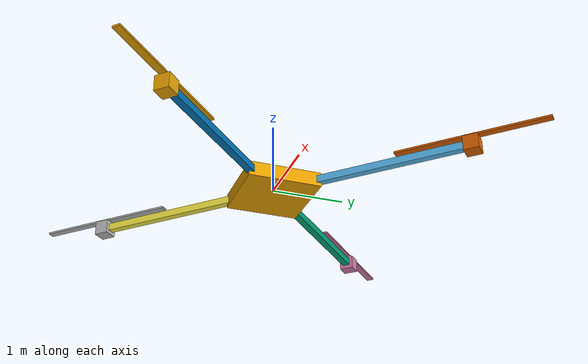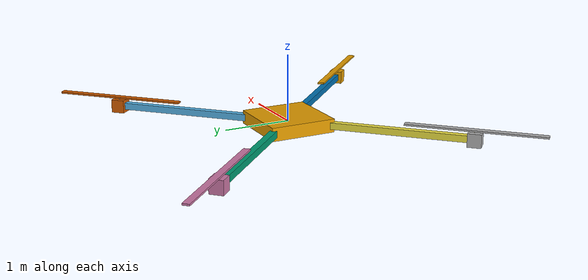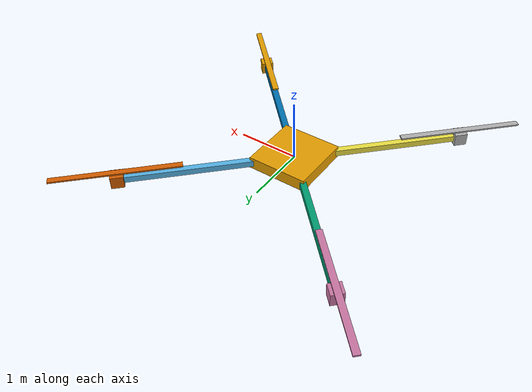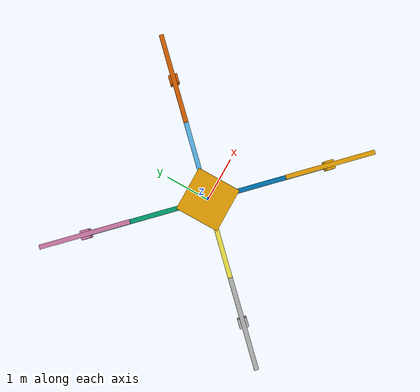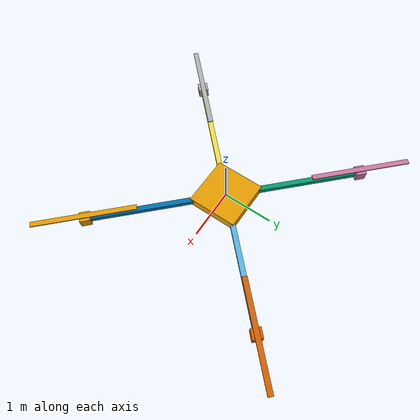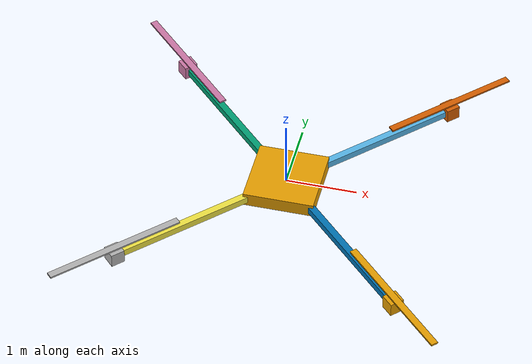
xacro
<?xml version="1.0"?>
<robot name="quadrotor" xmlns:xacro="http://www.ros.org/wiki/xacro">

<!-- body, airfoil sizes -->
<xacro:property name="body_s" value="1" />

<!-- body link -->
<xacro:property name="body_x" value="${body_s}" />
<xacro:property name="body_y" value="${body_s}" />
<xacro:property name="body_z" value="${body_s/5}" />
<xacro:property name="body_m" value="2" />

    <link name="body_FLU">
        <visual>
            <geometry>
               <box size="${body_x} ${body_y} ${body_z}" />
            </geometry>
        </visual>

        <collision>
            <geometry>
               <box size="${body_x} ${body_y} ${body_z}" />
            </geometry>
        </collision>

        <inertial>
            <mass value="${body_m}" />
             <inertia ixx="${1/12*body_m*(body_y*body_y+body_z*body_z)}" ixy="0" ixz="0" iyz="0"
                iyy="${1/12*body_m*(body_x*body_x+body_z*body_z)}" izz="${1/12*body_m*(body_x*body_x+body_y*body_y)}" />
        </inertial>

    </link>

<xacro:property name="arm_x" value="${2*body_s}" />
<xacro:property name="arm_y" value="${0.1*body_s}" />
<xacro:property name="arm_z" value="${0.1*body_s}" />
<xacro:property name="arm_m" value="${0.1*body_m}" />

    <link name="arm_1">
        <visual>
        <origin xyz="${arm_x/2} 0 0"/>
            <geometry>
               <box size="${arm_x} ${arm_y} ${arm_z}" />
            </geometry>
        </visual>

        <collision>
        <origin xyz="${arm_x/2} 0 0"/>
            <geometry>
               <box size="${arm_x} ${arm_y} ${arm_z}" />
            </geometry>
        </collision>

        <inertial>
            <origin xyz="${arm_x/2} 0 0"/>
            <mass value="${arm_m}" />
            <inertia ixx="${1/12*arm_m*(arm_y*arm_y+arm_z*arm_z)}" ixy="0" ixz="0" iyz="0"
                    iyy="${1/12*arm_m*(arm_x*arm_x+arm_z*arm_z)}" izz="${1/12*arm_m*(arm_x*arm_x+arm_y*arm_y)}" />
        </inertial>
    </link>

    <joint name="body_FLU_to_arm_1" type="fixed">
        <origin xyz="${0.9*body_x/2} ${0.9*body_y/2} 0" rpy="0 0 ${pi/4}"/>
        <parent link="body_FLU" />
        <child link="arm_1" />
    </joint>

    <link name="arm_2">
        <visual>
        <origin xyz="${arm_x/2} 0 0"/>
            <geometry>
                <box size="${arm_x} ${arm_y} ${arm_z}" />
            </geometry>
        </visual>

        <collision>
            <origin xyz="${arm_x/2} 0 0"/>
            <geometry>
                <box size="${arm_x} ${arm_y} ${arm_z}" />
            </geometry>
        </collision>

        <inertial>
            <origin xyz="${arm_x/2} 0 0"/>
            <mass value="${arm_m}" />
            <inertia ixx="${1/12*arm_m*(arm_y*arm_y+arm_z*arm_z)}" ixy="0" ixz="0" iyz="0"
                iyy="${1/12*arm_m*(arm_x*arm_x+arm_z*arm_z)}" izz="${1/12*arm_m*(arm_x*arm_x+arm_y*arm_y)}" />
        </inertial>
    </link>

    <joint name="body_FLU_to_arm_2" type="fixed">
        <origin xyz="-${0.9*body_x/2} ${0.9*body_y/2} 0" rpy="0 0 ${3/4*pi}"/>
        <parent link="body_FLU" />
        <child link="arm_2" />
    </joint>

        <link name="arm_3">
        <visual>
        <origin xyz="${arm_x/2} 0 0"/>
            <geometry>
                <box size="${arm_x} ${arm_y} ${arm_z}" />
            </geometry>
        </visual>

        <collision>
            <origin xyz="${arm_x/2} 0 0"/>
            <geometry>
                <box size="${arm_x} ${arm_y} ${arm_z}" />
            </geometry>
        </collision>

        <inertial>
            <origin xyz="${arm_x/2} 0 0"/>
            <mass value="${arm_m}" />
            <inertia ixx="${1/12*arm_m*(arm_y*arm_y+arm_z*arm_z)}" ixy="0" ixz="0" iyz="0"
                iyy="${1/12*arm_m*(arm_x*arm_x+arm_z*arm_z)}" izz="${1/12*arm_m*(arm_x*arm_x+arm_y*arm_y)}" />
        </inertial>
    </link>

    <joint name="body_FLU_to_arm_3" type="fixed">
        <origin xyz="-${0.9*body_x/2} -${0.9*body_y/2} 0" rpy="0 0 ${5/4*pi}"/>
        <parent link="body_FLU" />
        <child link="arm_3" />
    </joint>

        <link name="arm_4">
        <visual>
        <origin xyz="${arm_x/2} 0 0"/>
            <geometry>
                <box size="${arm_x} ${arm_y} ${arm_z}" />
            </geometry>
        </visual>

        <collision>
            <origin xyz="${arm_x/2} 0 0"/>
            <geometry>
                <box size="${arm_x} ${arm_y} ${arm_z}" />
            </geometry>
        </collision>

        <inertial>
            <origin xyz="${arm_x/2} 0 0"/>
            <mass value="${arm_m}" />
            <inertia ixx="${1/12*arm_m*(arm_y*arm_y+arm_z*arm_z)}" ixy="0" ixz="0" iyz="0"
                iyy="${1/12*arm_m*(arm_x*arm_x+arm_z*arm_z)}" izz="${1/12*arm_m*(arm_x*arm_x+arm_y*arm_y)}" />
        </inertial>
    </link>

    <joint name="body_FLU_to_arm_4" type="fixed">
        <origin xyz="${0.9*body_x/2} -${0.9*body_y/2} 0" rpy="0 0 ${7/4*pi}"/>
        <parent link="body_FLU" />
        <child link="arm_4" />
    </joint>

    ------------------------------------ motors

<xacro:property name="motor_x" value="${0.2*body_s}" />
<xacro:property name="motor_y" value="${0.2*body_s}" />
<xacro:property name="motor_z" value="${0.2*body_s}" />
<xacro:property name="motor_m" value="${0.1*body_m}" />

     <link name="motor_1">
        <visual>
        <origin xyz="${motor_x/2} 0 0"/>
            <geometry>
                <box size="${motor_x} ${motor_y} ${motor_z}" />
            </geometry>
        </visual>

        <collision>
            <origin xyz="${motor_x/2} 0 0"/>
            <geometry>
                <box size="${motor_x} ${motor_y} ${motor_z}" />
            </geometry>
        </collision>

        <inertial>
            <origin xyz="${motor_x/2} 0 0"/>
            <mass value="${motor_m}" />
            <inertia ixx="${1/12*motor_m*(motor_y*motor_y+motor_z*motor_z)}" ixy="0" ixz="0" iyz="0"
                iyy="${1/12*motor_m*(motor_x*motor_x+motor_z*motor_z)}" izz="${1/12*motor_m*(motor_x*motor_x+motor_y*motor_y)}" />
        </inertial>
    </link>

    <joint name="arm_1_to_motor_1" type="continuous">
        <origin xyz="${arm_x} 0 0" rpy="0 0 0"/>
        <parent link="arm_1" />
        <child link="motor_1" />
    </joint>

         <link name="motor_2">
        <visual>
        <origin xyz="${motor_x/2} 0 0"/>
            <geometry>
                <box size="${motor_x} ${motor_y} ${motor_z}" />
            </geometry>
        </visual>

        <collision>
            <origin xyz="${motor_x/2} 0 0"/>
            <geometry>
                <box size="${motor_x} ${motor_y} ${motor_z}" />
            </geometry>
        </collision>

        <inertial>
            <origin xyz="${motor_x/2} 0 0"/>
            <mass value="${motor_m}" />
            <inertia ixx="${1/12*motor_m*(motor_y*motor_y+motor_z*motor_z)}" ixy="0" ixz="0" iyz="0"
                iyy="${1/12*motor_m*(motor_x*motor_x+motor_z*motor_z)}" izz="${1/12*motor_m*(motor_x*motor_x+motor_y*motor_y)}" />
        </inertial>
    </link>

    <joint name="arm_2_to_motor_2" type="continuous">
        <origin xyz="${arm_x} 0 0" rpy="0 0 0"/>
        <parent link="arm_2" />
        <child link="motor_2" />
    </joint>

         <link name="motor_3">
        <visual>
        <origin xyz="${motor_x/2} 0 0"/>
            <geometry>
                <box size="${motor_x} ${motor_y} ${motor_z}" />
            </geometry>
        </visual>

        <collision>
            <origin xyz="${motor_x/2} 0 0"/>
            <geometry>
                <box size="${motor_x} ${motor_y} ${motor_z}" />
            </geometry>
        </collision>

        <inertial>
            <origin xyz="${motor_x/2} 0 0"/>
            <mass value="${motor_m}" />
            <inertia ixx="${1/12*motor_m*(motor_y*motor_y+motor_z*motor_z)}" ixy="0" ixz="0" iyz="0"
                iyy="${1/12*motor_m*(motor_x*motor_x+motor_z*motor_z)}" izz="${1/12*motor_m*(motor_x*motor_x+motor_y*motor_y)}" />
        </inertial>
    </link>

    <joint name="arm_3_to_motor_3" type="continuous">
        <origin xyz="${arm_x} 0 0" rpy="0 0 0"/>
        <parent link="arm_3" />
        <child link="motor_3" />
    </joint>

    <link name="motor_4">
        <visual>
        <origin xyz="${motor_x/2} 0 0"/>
            <geometry>
                <box size="${motor_x} ${motor_y} ${motor_z}" />
            </geometry>
        </visual>

        <collision>
            <origin xyz="${motor_x/2} 0 0"/>
            <geometry>
                <box size="${motor_x} ${motor_y} ${motor_z}" />
            </geometry>
        </collision>

        <inertial>
            <origin xyz="${motor_x/2} 0 0"/>
            <mass value="${motor_m}" />
            <inertia ixx="${1/12*motor_m*(motor_y*motor_y+motor_z*motor_z)}" ixy="0" ixz="0" iyz="0"
                iyy="${1/12*motor_m*(motor_x*motor_x+motor_z*motor_z)}" izz="${1/12*motor_m*(motor_x*motor_x+motor_y*motor_y)}" />
        </inertial>
    </link>

    <joint name="arm_4_to_motor_4" type="continuous">
        <origin xyz="${arm_x} 0 0" rpy="0 0 0"/>
        <parent link="arm_4" />
        <child link="motor_4" />
    </joint>

 ------------------------------------- propellers
<!-- arm link -->
<xacro:property name="prop_arm_m" value="${body_m/20}" />
<xacro:property name="prop_arm_r" value="${body_s/40}" />
<xacro:property name="prop_arm_h" value="${body_s/40}" />

    <link name="prop_arm_1">
        <visual>
            <origin xyz="0 0 ${prop_arm_h/2}" rpy="0 0 0"/>
            <geometry>
                <cylinder radius="${prop_arm_r}" length="${prop_arm_h}" />
            </geometry>
        </visual>

        <collision>
            <origin xyz="0 0 ${prop_arm_h/2}" rpy="0 0 0"/>
            <geometry>
                <cylinder radius="${prop_arm_r}" length="${prop_arm_h}" />
            </geometry>
        </collision>

        <inertial>
            <origin xyz="0 0 ${prop_arm_h/2}" />
            <mass value="${prop_arm_m}" />
            <inertia ixx="${1/12*prop_arm_m*prop_arm_h*prop_arm_h+1/4*prop_arm_m*prop_arm_r*prop_arm_r}" ixy="0" ixz="0" iyz="0"
                iyy="${1/12*prop_arm_m*prop_arm_h*prop_arm_h+1/4*prop_arm_m*prop_arm_r*prop_arm_r}" izz="${1/2*prop_arm_m*prop_arm_r*prop_arm_r}" />
        </inertial>
    </link>

    <joint name="motor_1_to_prop_arm_1" type="continuous">
        <origin xyz="${motor_x/2} 0 ${motor_z/2}" rpy="0 0 0" />
        <axis xyz="0 0 1" />
        <parent link="motor_1" />
        <child link="prop_arm_1" />
    </joint>

        <link name="prop_arm_2">
        <visual>
            <origin xyz="0 0 ${prop_arm_h/2}" rpy="0 0 0"/>
            <geometry>
                <cylinder radius="${prop_arm_r}" length="${prop_arm_h}" />
            </geometry>
        </visual>

        <collision>
            <origin xyz="0 0 ${prop_arm_h/2}" rpy="0 0 0"/>
            <geometry>
                <cylinder radius="${prop_arm_r}" length="${prop_arm_h}" />
            </geometry>
        </collision>

        <inertial>
            <origin xyz="0 0 ${prop_arm_h/2}" />
            <mass value="${prop_arm_m}" />
            <inertia ixx="${1/12*prop_arm_m*prop_arm_h*prop_arm_h+1/4*prop_arm_m*prop_arm_r*prop_arm_r}" ixy="0" ixz="0" iyz="0"
                iyy="${1/12*prop_arm_m*prop_arm_h*prop_arm_h+1/4*prop_arm_m*prop_arm_r*prop_arm_r}" izz="${1/2*prop_arm_m*prop_arm_r*prop_arm_r}" />
        </inertial>
    </link>

    <joint name="motor_2_to_prop_arm_2" type="continuous">
        <origin xyz="${motor_x/2} 0 ${motor_z/2}" rpy="0 0 0" />
        <axis xyz="0 0 1" />
        <parent link="motor_2" />
        <child link="prop_arm_2" />
    </joint>

        <link name="prop_arm_3">
        <visual>
            <origin xyz="0 0 ${prop_arm_h/2}" rpy="0 0 0"/>
            <geometry>
                <cylinder radius="${prop_arm_r}" length="${prop_arm_h}" />
            </geometry>
        </visual>

        <collision>
            <origin xyz="0 0 ${prop_arm_h/2}" rpy="0 0 0"/>
            <geometry>
                <cylinder radius="${prop_arm_r}" length="${prop_arm_h}" />
            </geometry>
        </collision>

        <inertial>
            <origin xyz="0 0 ${prop_arm_h/2}" />
            <mass value="${prop_arm_m}" />
            <inertia ixx="${1/12*prop_arm_m*prop_arm_h*prop_arm_h+1/4*prop_arm_m*prop_arm_r*prop_arm_r}" ixy="0" ixz="0" iyz="0"
                iyy="${1/12*prop_arm_m*prop_arm_h*prop_arm_h+1/4*prop_arm_m*prop_arm_r*prop_arm_r}" izz="${1/2*prop_arm_m*prop_arm_r*prop_arm_r}" />
        </inertial>
    </link>

    <joint name="motor_3_to_prop_arm_3" type="continuous">
        <origin xyz="${motor_x/2} 0 ${motor_z/2}" rpy="0 0 0" />
        <axis xyz="0 0 1" />
        <parent link="motor_3" />
        <child link="prop_arm_3" />
    </joint>

        <link name="prop_arm_4">
        <visual>
            <origin xyz="0 0 ${prop_arm_h/2}" rpy="0 0 0"/>
            <geometry>
                <cylinder radius="${prop_arm_r}" length="${prop_arm_h}" />
            </geometry>
        </visual>

        <collision>
            <origin xyz="0 0 ${prop_arm_h/2}" rpy="0 0 0"/>
            <geometry>
                <cylinder radius="${prop_arm_r}" length="${prop_arm_h}" />
            </geometry>
        </collision>

        <inertial>
            <origin xyz="0 0 ${prop_arm_h/2}" />
            <mass value="${prop_arm_m}" />
            <inertia ixx="${1/12*prop_arm_m*prop_arm_h*prop_arm_h+1/4*prop_arm_m*prop_arm_r*prop_arm_r}" ixy="0" ixz="0" iyz="0"
                iyy="${1/12*prop_arm_m*prop_arm_h*prop_arm_h+1/4*prop_arm_m*prop_arm_r*prop_arm_r}" izz="${1/2*prop_arm_m*prop_arm_r*prop_arm_r}" />
        </inertial>
    </link>

    <joint name="motor_4_to_prop_arm_4" type="continuous">
        <origin xyz="${motor_x/2} 0 ${motor_z/2}" rpy="0 0 0" />
        <axis xyz="0 0 1" />
        <parent link="motor_4" />
        <child link="prop_arm_4" />
    </joint>

<!-- propeller links -->
<xacro:property name="propeller_m" value="${body_m/20}" />
<xacro:property name="propeller_x" value="${2*body_s}" />
<xacro:property name="propeller_y" value="${body_s/10}" />
<xacro:property name="propeller_z" value="${body_s/40}" />

   <link name="propeller_1">
        <visual>
            <geometry>
                <box size="${propeller_x} ${propeller_y} ${propeller_z}" />
            </geometry>
        </visual>

        <collision>
            <geometry>
                <box size="${propeller_x} ${propeller_y} ${propeller_z}" />
            </geometry>
        </collision>

        <inertial>
            <mass value="${propeller_m}" />
            <inertia ixx="${1/12*propeller_m*(propeller_y*propeller_y+propeller_z*propeller_z)}" ixy="0" ixz="0" iyz="0"
                iyy="${1/12*propeller_m*(propeller_x*propeller_x+propeller_z*propeller_z)}" izz="${1/12*propeller_m*(propeller_x*propeller_x+propeller_y*propeller_y)}" />
        </inertial>
    </link>

    <joint name="motor_1_to_prop_1" type="continuous">
        <origin xyz="0 0 ${prop_arm_h}" rpy="0 0 0"/>
        <axis xyz="0 0 1" />
        <parent link="prop_arm_1" />
        <child link="propeller_1" />
    </joint>

       <link name="propeller_2">
        <visual>
            <geometry>
                <box size="${propeller_x} ${propeller_y} ${propeller_z}" />
            </geometry>
        </visual>

        <collision>
            <geometry>
                <box size="${propeller_x} ${propeller_y} ${propeller_z}" />
            </geometry>
        </collision>

        <inertial>
            <mass value="${propeller_m}" />
            <inertia ixx="${1/12*propeller_m*(propeller_y*propeller_y+propeller_z*propeller_z)}" ixy="0" ixz="0" iyz="0"
                iyy="${1/12*propeller_m*(propeller_x*propeller_x+propeller_z*propeller_z)}" izz="${1/12*propeller_m*(propeller_x*propeller_x+propeller_y*propeller_y)}" />
        </inertial>
    </link>

    <joint name="motor_2_to_prop_2" type="continuous">
        <origin xyz="0 0 ${prop_arm_h}" rpy="0 0 0"/>
        <axis xyz="0 0 1" />
        <parent link="prop_arm_2" />
        <child link="propeller_2" />
    </joint>

       <link name="propeller_3">
        <visual>
            <geometry>
                <box size="${propeller_x} ${propeller_y} ${propeller_z}" />
            </geometry>
        </visual>

        <collision>
            <geometry>
                <box size="${propeller_x} ${propeller_y} ${propeller_z}" />
            </geometry>
        </collision>

        <inertial>
            <mass value="${propeller_m}" />
            <inertia ixx="${1/12*propeller_m*(propeller_y*propeller_y+propeller_z*propeller_z)}" ixy="0" ixz="0" iyz="0"
                iyy="${1/12*propeller_m*(propeller_x*propeller_x+propeller_z*propeller_z)}" izz="${1/12*propeller_m*(propeller_x*propeller_x+propeller_y*propeller_y)}" />
        </inertial>
    </link>

    <joint name="motor_3_to_prop_3" type="continuous">
        <origin xyz="0 0 ${prop_arm_h}" rpy="0 0 0"/>
        <axis xyz="0 0 1" />
        <parent link="prop_arm_3" />
        <child link="propeller_3" />
    </joint>

       <link name="propeller_4">
        <visual>
            <geometry>
                <box size="${propeller_x} ${propeller_y} ${propeller_z}" />
            </geometry>
        </visual>

        <collision>
            <geometry>
                <box size="${propeller_x} ${propeller_y} ${propeller_z}" />
            </geometry>
        </collision>

        <inertial>
            <mass value="${propeller_m}" />
            <inertia ixx="${1/12*propeller_m*(propeller_y*propeller_y+propeller_z*propeller_z)}" ixy="0" ixz="0" iyz="0"
                iyy="${1/12*propeller_m*(propeller_x*propeller_x+propeller_z*propeller_z)}" izz="${1/12*propeller_m*(propeller_x*propeller_x+propeller_y*propeller_y)}" />
        </inertial>
    </link>

    <joint name="motor_4_to_prop_4" type="continuous">
        <origin xyz="0 0 ${prop_arm_h}" rpy="0 0 0"/>
        <axis xyz="0 0 1" />
        <parent link="prop_arm_4" />
        <child link="propeller_4" />
    </joint>
</robot>
